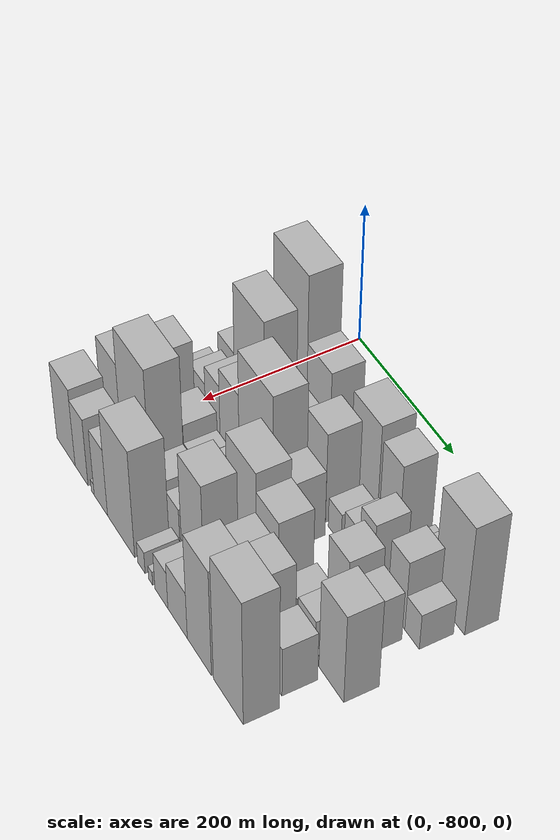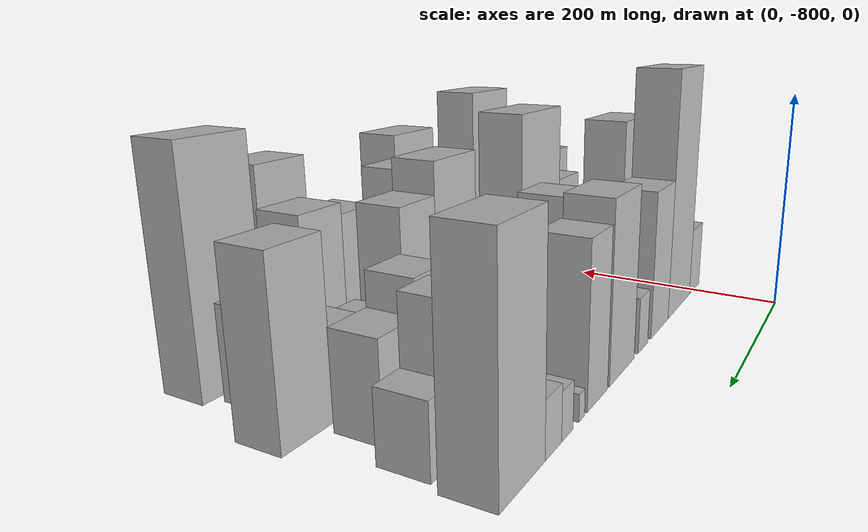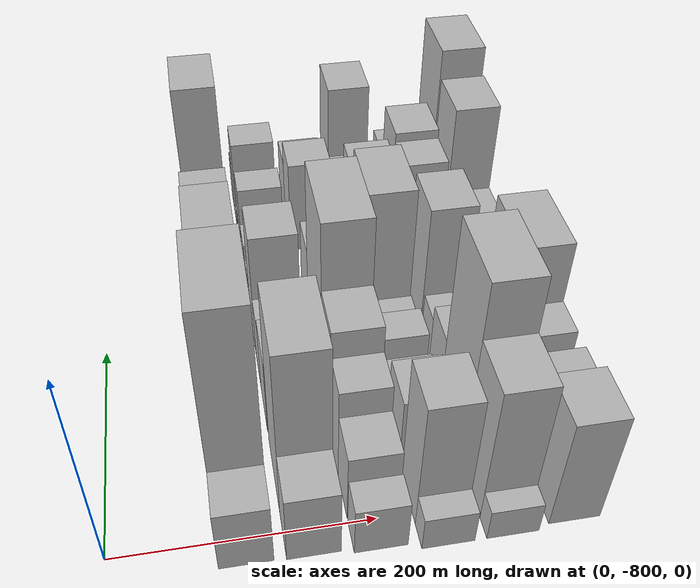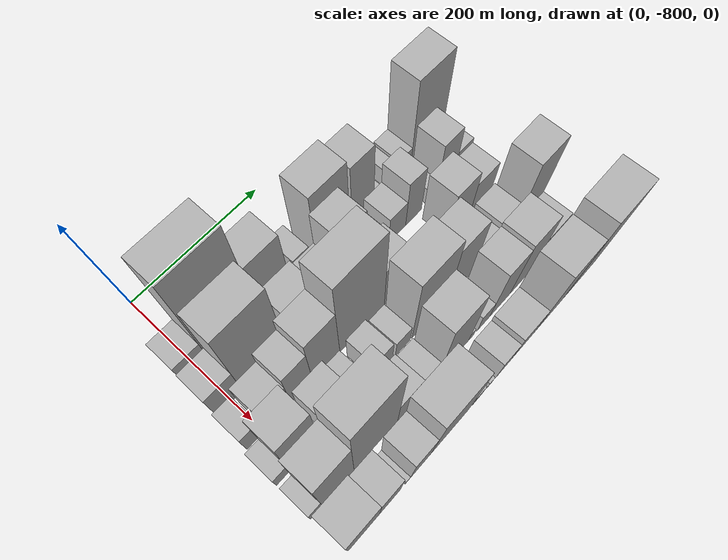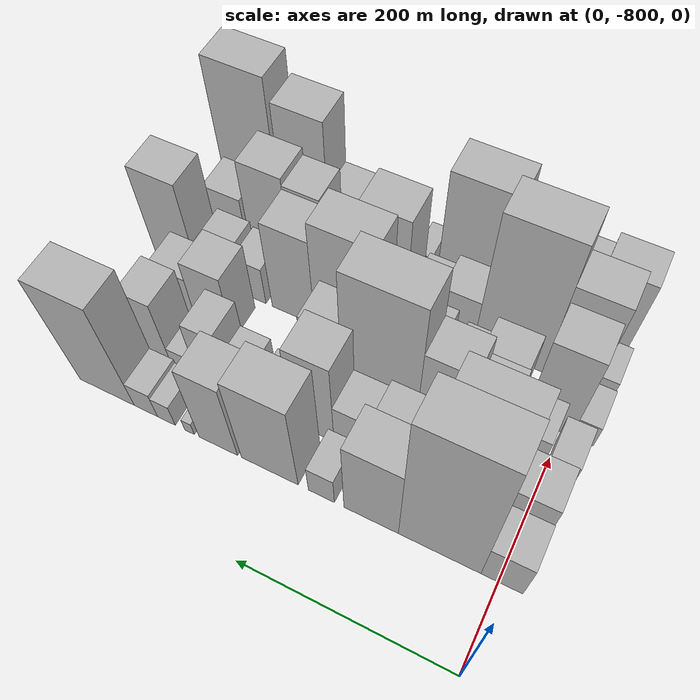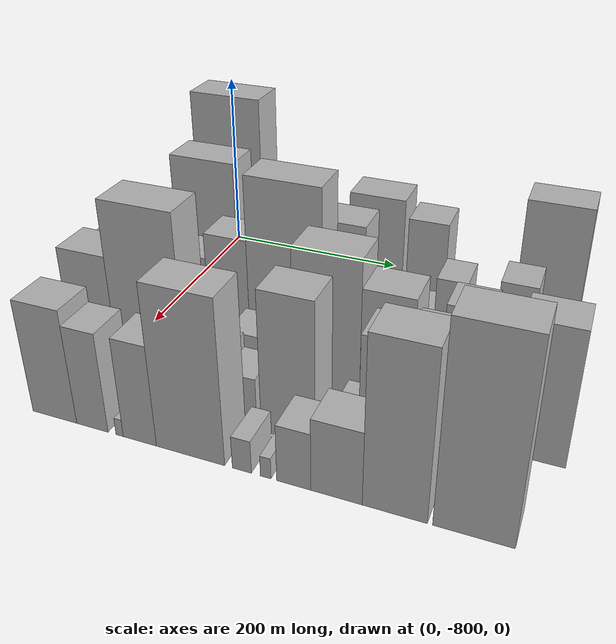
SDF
<sdf version="1.6">
 <world name="default">
  <model name="building_1">
   <static>1</static>
   <pose>100.0000 -802.7272 0 0.000000 0.000000 0.000000</pose>
   <link name="link">
    <pose>0 0 33.00 0 0 0</pose>
    <collision name="collision"><geometry><box><size>40.0000 36.5455 66.0000</size></box></geometry></collision>
    <visual name="visual">
     <cast_shadows>0</cast_shadows>
     <geometry><box><size>40.0000 36.5455 66.0000</size></box></geometry>
     <material>
      <script>
       <uri>model://HANNAS_wall/materials/scripts</uri>
       <uri>model://HANNAS_wall/materials/textures</uri>
       <name>vrc/HANNAS_wall</name>
      </script>
     </material>
    </visual>
   </link>
  </model>
  <model name="building_2">
   <static>1</static>
   <pose>100.0000 -747.2606 0 0.000000 0.000000 0.000000</pose>
   <link name="link">
    <pose>0 0 112.50 0 0 0</pose>
    <collision name="collision"><geometry><box><size>40.0000 74.3877 225.0000</size></box></geometry></collision>
    <visual name="visual">
     <cast_shadows>0</cast_shadows>
     <geometry><box><size>40.0000 74.3877 225.0000</size></box></geometry>
     <material>
      <script>
       <uri>model://HANNAS_wall/materials/scripts</uri>
       <uri>model://HANNAS_wall/materials/textures</uri>
       <name>vrc/HANNAS_wall</name>
      </script>
     </material>
    </visual>
   </link>
  </model>
  <model name="building_3">
   <static>1</static>
   <pose>100.0000 -684.5921 0 0.000000 0.000000 0.000000</pose>
   <link name="link">
    <pose>0 0 64.50 0 0 0</pose>
    <collision name="collision"><geometry><box><size>40.0000 50.9493 129.0000</size></box></geometry></collision>
    <visual name="visual">
     <cast_shadows>0</cast_shadows>
     <geometry><box><size>40.0000 50.9493 129.0000</size></box></geometry>
     <material>
      <script>
       <uri>model://HANNAS_wall/materials/scripts</uri>
       <uri>model://HANNAS_wall/materials/textures</uri>
       <name>vrc/HANNAS_wall</name>
      </script>
     </material>
    </visual>
   </link>
  </model>
  <model name="building_4">
   <static>1</static>
   <pose>100.0000 -637.5863 0 0.000000 0.000000 0.000000</pose>
   <link name="link">
    <pose>0 0 24.00 0 0 0</pose>
    <collision name="collision"><geometry><box><size>40.0000 25.0623 48.0000</size></box></geometry></collision>
    <visual name="visual">
     <cast_shadows>0</cast_shadows>
     <geometry><box><size>40.0000 25.0623 48.0000</size></box></geometry>
     <material>
      <script>
       <uri>model://HANNAS_wall/materials/scripts</uri>
       <uri>model://HANNAS_wall/materials/textures</uri>
       <name>vrc/HANNAS_wall</name>
      </script>
     </material>
    </visual>
   </link>
  </model>
  <model name="building_5">
   <static>1</static>
   <pose>100.0000 -586.9120 0 0.000000 0.000000 0.000000</pose>
   <link name="link">
    <pose>0 0 72.00 0 0 0</pose>
    <collision name="collision"><geometry><box><size>40.0000 56.2862 144.0000</size></box></geometry></collision>
    <visual name="visual">
     <cast_shadows>0</cast_shadows>
     <geometry><box><size>40.0000 56.2862 144.0000</size></box></geometry>
     <material>
      <script>
       <uri>model://HANNAS_wall/materials/scripts</uri>
       <uri>model://HANNAS_wall/materials/textures</uri>
       <name>vrc/HANNAS_wall</name>
      </script>
     </material>
    </visual>
   </link>
  </model>
  <model name="building_6">
   <static>1</static>
   <pose>100.0000 -535.0893 0 0.000000 0.000000 0.000000</pose>
   <link name="link">
    <pose>0 0 63.00 0 0 0</pose>
    <collision name="collision"><geometry><box><size>40.0000 39.3591 126.0000</size></box></geometry></collision>
    <visual name="visual">
     <cast_shadows>0</cast_shadows>
     <geometry><box><size>40.0000 39.3591 126.0000</size></box></geometry>
     <material>
      <script>
       <uri>model://HANNAS_wall/materials/scripts</uri>
       <uri>model://HANNAS_wall/materials/textures</uri>
       <name>vrc/HANNAS_wall</name>
      </script>
     </material>
    </visual>
   </link>
  </model>
  <model name="building_7">
   <static>1</static>
   <pose>100.0000 -505.4283 0 0.000000 0.000000 0.000000</pose>
   <link name="link">
    <pose>0 0 10.50 0 0 0</pose>
    <collision name="collision"><geometry><box><size>40.0000 9.9630 21.0000</size></box></geometry></collision>
    <visual name="visual">
     <cast_shadows>0</cast_shadows>
     <geometry><box><size>40.0000 9.9630 21.0000</size></box></geometry>
     <material>
      <script>
       <uri>model://HANNAS_wall/materials/scripts</uri>
       <uri>model://HANNAS_wall/materials/textures</uri>
       <name>vrc/HANNAS_wall</name>
      </script>
     </material>
    </visual>
   </link>
  </model>
  <model name="building_8">
   <static>1</static>
   <pose>100.0000 -481.1696 0 0.000000 0.000000 0.000000</pose>
   <link name="link">
    <pose>0 0 18.00 0 0 0</pose>
    <collision name="collision"><geometry><box><size>40.0000 18.5544 36.0000</size></box></geometry></collision>
    <visual name="visual">
     <cast_shadows>0</cast_shadows>
     <geometry><box><size>40.0000 18.5544 36.0000</size></box></geometry>
     <material>
      <script>
       <uri>model://HANNAS_wall/materials/scripts</uri>
       <uri>model://HANNAS_wall/materials/textures</uri>
       <name>vrc/HANNAS_wall</name>
      </script>
     </material>
    </visual>
   </link>
  </model>
  <model name="building_9">
   <static>1</static>
   <pose>100.0000 -459.4006 0 0.000000 0.000000 0.000000</pose>
   <link name="link">
    <pose>0 0 21.00 0 0 0</pose>
    <collision name="collision"><geometry><box><size>40.0000 24.9837 42.0000</size></box></geometry></collision>
    <visual name="visual">
     <cast_shadows>0</cast_shadows>
     <geometry><box><size>40.0000 24.9837 42.0000</size></box></geometry>
     <material>
      <script>
       <uri>model://HANNAS_wall/materials/scripts</uri>
       <uri>model://HANNAS_wall/materials/textures</uri>
       <name>vrc/HANNAS_wall</name>
      </script>
     </material>
    </visual>
   </link>
  </model>
  <model name="building_10">
   <static>1</static>
   <pose>100.0000 -417.1602 0 0.000000 0.000000 0.000000</pose>
   <link name="link">
    <pose>0 0 82.50 0 0 0</pose>
    <collision name="collision"><geometry><box><size>40.0000 59.4971 165.0000</size></box></geometry></collision>
    <visual name="visual">
     <cast_shadows>0</cast_shadows>
     <geometry><box><size>40.0000 59.4971 165.0000</size></box></geometry>
     <material>
      <script>
       <uri>model://HANNAS_wall/materials/scripts</uri>
       <uri>model://HANNAS_wall/materials/textures</uri>
       <name>vrc/HANNAS_wall</name>
      </script>
     </material>
    </visual>
   </link>
  </model>
  <model name="building_44">
   <static>1</static>
   <pose>149.0000 -803.0353 0 0.000000 0.000000 0.000000</pose>
   <link name="link">
    <pose>0 0 36.00 0 0 0</pose>
    <collision name="collision"><geometry><box><size>40.0000 37.9294 72.0000</size></box></geometry></collision>
    <visual name="visual">
     <cast_shadows>0</cast_shadows>
     <geometry><box><size>40.0000 37.9294 72.0000</size></box></geometry>
     <material>
      <script>
       <uri>model://HANNAS_wall/materials/scripts</uri>
       <uri>model://HANNAS_wall/materials/textures</uri>
       <name>vrc/HANNAS_wall</name>
      </script>
     </material>
    </visual>
   </link>
  </model>
  <model name="building_45">
   <static>1</static>
   <pose>149.0000 -750.1033 0 0.000000 0.000000 0.000000</pose>
   <link name="link">
    <pose>0 0 88.50 0 0 0</pose>
    <collision name="collision"><geometry><box><size>40.0000 67.9345 177.0000</size></box></geometry></collision>
    <visual name="visual">
     <cast_shadows>0</cast_shadows>
     <geometry><box><size>40.0000 67.9345 177.0000</size></box></geometry>
     <material>
      <script>
       <uri>model://HANNAS_wall/materials/scripts</uri>
       <uri>model://HANNAS_wall/materials/textures</uri>
       <name>vrc/HANNAS_wall</name>
      </script>
     </material>
    </visual>
   </link>
  </model>
  <model name="building_46">
   <static>1</static>
   <pose>149.0000 -683.1631 0 0.000000 0.000000 0.000000</pose>
   <link name="link">
    <pose>0 0 40.50 0 0 0</pose>
    <collision name="collision"><geometry><box><size>40.0000 47.9459 81.0000</size></box></geometry></collision>
    <visual name="visual">
     <cast_shadows>0</cast_shadows>
     <geometry><box><size>40.0000 47.9459 81.0000</size></box></geometry>
     <material>
      <script>
       <uri>model://HANNAS_wall/materials/scripts</uri>
       <uri>model://HANNAS_wall/materials/textures</uri>
       <name>vrc/HANNAS_wall</name>
      </script>
     </material>
    </visual>
   </link>
  </model>
  <model name="building_47">
   <static>1</static>
   <pose>149.0000 -641.7126 0 0.000000 0.000000 0.000000</pose>
   <link name="link">
    <pose>0 0 34.50 0 0 0</pose>
    <collision name="collision"><geometry><box><size>40.0000 34.9551 69.0000</size></box></geometry></collision>
    <visual name="visual">
     <cast_shadows>0</cast_shadows>
     <geometry><box><size>40.0000 34.9551 69.0000</size></box></geometry>
     <material>
      <script>
       <uri>model://HANNAS_wall/materials/scripts</uri>
       <uri>model://HANNAS_wall/materials/textures</uri>
       <name>vrc/HANNAS_wall</name>
      </script>
     </material>
    </visual>
   </link>
  </model>
  <model name="building_48">
   <static>1</static>
   <pose>149.0000 -603.1813 0 0.000000 0.000000 0.000000</pose>
   <link name="link">
    <pose>0 0 67.50 0 0 0</pose>
    <collision name="collision"><geometry><box><size>40.0000 42.1076 135.0000</size></box></geometry></collision>
    <visual name="visual">
     <cast_shadows>0</cast_shadows>
     <geometry><box><size>40.0000 42.1076 135.0000</size></box></geometry>
     <material>
      <script>
       <uri>model://HANNAS_wall/materials/scripts</uri>
       <uri>model://HANNAS_wall/materials/textures</uri>
       <name>vrc/HANNAS_wall</name>
      </script>
     </material>
    </visual>
   </link>
  </model>
  <model name="building_49">
   <static>1</static>
   <pose>149.0000 -562.7441 0 0.000000 0.000000 0.000000</pose>
   <link name="link">
    <pose>0 0 22.50 0 0 0</pose>
    <collision name="collision"><geometry><box><size>40.0000 26.7669 45.0000</size></box></geometry></collision>
    <visual name="visual">
     <cast_shadows>0</cast_shadows>
     <geometry><box><size>40.0000 26.7669 45.0000</size></box></geometry>
     <material>
      <script>
       <uri>model://HANNAS_wall/materials/scripts</uri>
       <uri>model://HANNAS_wall/materials/textures</uri>
       <name>vrc/HANNAS_wall</name>
      </script>
     </material>
    </visual>
   </link>
  </model>
  <model name="building_50">
   <static>1</static>
   <pose>149.0000 -528.2144 0 0.000000 0.000000 0.000000</pose>
   <link name="link">
    <pose>0 0 28.50 0 0 0</pose>
    <collision name="collision"><geometry><box><size>40.0000 30.2926 57.0000</size></box></geometry></collision>
    <visual name="visual">
     <cast_shadows>0</cast_shadows>
     <geometry><box><size>40.0000 30.2926 57.0000</size></box></geometry>
     <material>
      <script>
       <uri>model://HANNAS_wall/materials/scripts</uri>
       <uri>model://HANNAS_wall/materials/textures</uri>
       <name>vrc/HANNAS_wall</name>
      </script>
     </material>
    </visual>
   </link>
  </model>
  <model name="building_51">
   <static>1</static>
   <pose>149.0000 -498.4936 0 0.000000 0.000000 0.000000</pose>
   <link name="link">
    <pose>0 0 48.00 0 0 0</pose>
    <collision name="collision"><geometry><box><size>40.0000 29.1489 96.0000</size></box></geometry></collision>
    <visual name="visual">
     <cast_shadows>0</cast_shadows>
     <geometry><box><size>40.0000 29.1489 96.0000</size></box></geometry>
     <material>
      <script>
       <uri>model://HANNAS_wall/materials/scripts</uri>
       <uri>model://HANNAS_wall/materials/textures</uri>
       <name>vrc/HANNAS_wall</name>
      </script>
     </material>
    </visual>
   </link>
  </model>
  <model name="building_52">
   <static>1</static>
   <pose>149.0000 -464.7220 0 0.000000 0.000000 0.000000</pose>
   <link name="link">
    <pose>0 0 16.50 0 0 0</pose>
    <collision name="collision"><geometry><box><size>40.0000 18.3942 33.0000</size></box></geometry></collision>
    <visual name="visual">
     <cast_shadows>0</cast_shadows>
     <geometry><box><size>40.0000 18.3942 33.0000</size></box></geometry>
     <material>
      <script>
       <uri>model://HANNAS_wall/materials/scripts</uri>
       <uri>model://HANNAS_wall/materials/textures</uri>
       <name>vrc/HANNAS_wall</name>
      </script>
     </material>
    </visual>
   </link>
  </model>
  <model name="building_53">
   <static>1</static>
   <pose>149.0000 -438.6928 0 0.000000 0.000000 0.000000</pose>
   <link name="link">
    <pose>0 0 52.50 0 0 0</pose>
    <collision name="collision"><geometry><box><size>40.0000 33.6643 105.0000</size></box></geometry></collision>
    <visual name="visual">
     <cast_shadows>0</cast_shadows>
     <geometry><box><size>40.0000 33.6643 105.0000</size></box></geometry>
     <material>
      <script>
       <uri>model://HANNAS_wall/materials/scripts</uri>
       <uri>model://HANNAS_wall/materials/textures</uri>
       <name>vrc/HANNAS_wall</name>
      </script>
     </material>
    </visual>
   </link>
  </model>
  <model name="building_54">
   <static>1</static>
   <pose>149.0000 -407.9433 0 0.000000 0.000000 0.000000</pose>
   <link name="link">
    <pose>0 0 27.00 0 0 0</pose>
    <collision name="collision"><geometry><box><size>40.0000 27.8346 54.0000</size></box></geometry></collision>
    <visual name="visual">
     <cast_shadows>0</cast_shadows>
     <geometry><box><size>40.0000 27.8346 54.0000</size></box></geometry>
     <material>
      <script>
       <uri>model://HANNAS_wall/materials/scripts</uri>
       <uri>model://HANNAS_wall/materials/textures</uri>
       <name>vrc/HANNAS_wall</name>
      </script>
     </material>
    </visual>
   </link>
  </model>
  <model name="building_84">
   <static>1</static>
   <pose>198.0000 -812.0581 0 0.000000 0.000000 0.000000</pose>
   <link name="link">
    <pose>0 0 25.50 0 0 0</pose>
    <collision name="collision"><geometry><box><size>40.0000 25.8838 51.0000</size></box></geometry></collision>
    <visual name="visual">
     <cast_shadows>0</cast_shadows>
     <geometry><box><size>40.0000 25.8838 51.0000</size></box></geometry>
     <material>
      <script>
       <uri>model://HANNAS_wall/materials/scripts</uri>
       <uri>model://HANNAS_wall/materials/textures</uri>
       <name>vrc/HANNAS_wall</name>
      </script>
     </material>
    </visual>
   </link>
  </model>
  <model name="building_85">
   <static>1</static>
   <pose>198.0000 -777.2414 0 0.000000 0.000000 0.000000</pose>
   <link name="link">
    <pose>0 0 36.00 0 0 0</pose>
    <collision name="collision"><geometry><box><size>40.0000 37.7497 72.0000</size></box></geometry></collision>
    <visual name="visual">
     <cast_shadows>0</cast_shadows>
     <geometry><box><size>40.0000 37.7497 72.0000</size></box></geometry>
     <material>
      <script>
       <uri>model://HANNAS_wall/materials/scripts</uri>
       <uri>model://HANNAS_wall/materials/textures</uri>
       <name>vrc/HANNAS_wall</name>
      </script>
     </material>
    </visual>
   </link>
  </model>
  <model name="building_86">
   <static>1</static>
   <pose>198.0000 -741.5495 0 0.000000 0.000000 0.000000</pose>
   <link name="link">
    <pose>0 0 49.50 0 0 0</pose>
    <collision name="collision"><geometry><box><size>40.0000 33.6341 99.0000</size></box></geometry></collision>
    <visual name="visual">
     <cast_shadows>0</cast_shadows>
     <geometry><box><size>40.0000 33.6341 99.0000</size></box></geometry>
     <material>
      <script>
       <uri>model://HANNAS_wall/materials/scripts</uri>
       <uri>model://HANNAS_wall/materials/textures</uri>
       <name>vrc/HANNAS_wall</name>
      </script>
     </material>
    </visual>
   </link>
  </model>
  <model name="building_87">
   <static>1</static>
   <pose>198.0000 -702.9421 0 0.000000 0.000000 0.000000</pose>
   <link name="link">
    <pose>0 0 63.00 0 0 0</pose>
    <collision name="collision"><geometry><box><size>40.0000 43.5806 126.0000</size></box></geometry></collision>
    <visual name="visual">
     <cast_shadows>0</cast_shadows>
     <geometry><box><size>40.0000 43.5806 126.0000</size></box></geometry>
     <material>
      <script>
       <uri>model://HANNAS_wall/materials/scripts</uri>
       <uri>model://HANNAS_wall/materials/textures</uri>
       <name>vrc/HANNAS_wall</name>
      </script>
     </material>
    </visual>
   </link>
  </model>
  <model name="building_88">
   <static>1</static>
   <pose>198.0000 -643.9650 0 0.000000 0.000000 0.000000</pose>
   <link name="link">
    <pose>0 0 96.00 0 0 0</pose>
    <collision name="collision"><geometry><box><size>40.0000 74.3737 192.0000</size></box></geometry></collision>
    <visual name="visual">
     <cast_shadows>0</cast_shadows>
     <geometry><box><size>40.0000 74.3737 192.0000</size></box></geometry>
     <material>
      <script>
       <uri>model://HANNAS_wall/materials/scripts</uri>
       <uri>model://HANNAS_wall/materials/textures</uri>
       <name>vrc/HANNAS_wall</name>
      </script>
     </material>
    </visual>
   </link>
  </model>
  <model name="building_89">
   <static>1</static>
   <pose>198.0000 -587.0425 0 0.000000 0.000000 0.000000</pose>
   <link name="link">
    <pose>0 0 49.50 0 0 0</pose>
    <collision name="collision"><geometry><box><size>40.0000 39.4711 99.0000</size></box></geometry></collision>
    <visual name="visual">
     <cast_shadows>0</cast_shadows>
     <geometry><box><size>40.0000 39.4711 99.0000</size></box></geometry>
     <material>
      <script>
       <uri>model://HANNAS_wall/materials/scripts</uri>
       <uri>model://HANNAS_wall/materials/textures</uri>
       <name>vrc/HANNAS_wall</name>
      </script>
     </material>
    </visual>
   </link>
  </model>
  <model name="building_90">
   <static>1</static>
   <pose>198.0000 -472.4368 0 0.000000 0.000000 0.000000</pose>
   <link name="link">
    <pose>0 0 51.00 0 0 0</pose>
    <collision name="collision"><geometry><box><size>40.0000 39.9135 102.0000</size></box></geometry></collision>
    <visual name="visual">
     <cast_shadows>0</cast_shadows>
     <geometry><box><size>40.0000 39.9135 102.0000</size></box></geometry>
     <material>
      <script>
       <uri>model://HANNAS_wall/materials/scripts</uri>
       <uri>model://HANNAS_wall/materials/textures</uri>
       <name>vrc/HANNAS_wall</name>
      </script>
     </material>
    </visual>
   </link>
  </model>
  <model name="building_91">
   <static>1</static>
   <pose>198.0000 -432.6299 0 0.000000 0.000000 0.000000</pose>
   <link name="link">
    <pose>0 0 37.50 0 0 0</pose>
    <collision name="collision"><geometry><box><size>40.0000 39.7003 75.0000</size></box></geometry></collision>
    <visual name="visual">
     <cast_shadows>0</cast_shadows>
     <geometry><box><size>40.0000 39.7003 75.0000</size></box></geometry>
     <material>
      <script>
       <uri>model://HANNAS_wall/materials/scripts</uri>
       <uri>model://HANNAS_wall/materials/textures</uri>
       <name>vrc/HANNAS_wall</name>
      </script>
     </material>
    </visual>
   </link>
  </model>
  <model name="building_124">
   <static>1</static>
   <pose>247.0000 -819.8785 0 0.000000 0.000000 0.000000</pose>
   <link name="link">
    <pose>0 0 18.00 0 0 0</pose>
    <collision name="collision"><geometry><box><size>40.0000 20.2429 36.0000</size></box></geometry></collision>
    <visual name="visual">
     <cast_shadows>0</cast_shadows>
     <geometry><box><size>40.0000 20.2429 36.0000</size></box></geometry>
     <material>
      <script>
       <uri>model://HANNAS_wall/materials/scripts</uri>
       <uri>model://HANNAS_wall/materials/textures</uri>
       <name>vrc/HANNAS_wall</name>
      </script>
     </material>
    </visual>
   </link>
  </model>
  <model name="building_125">
   <static>1</static>
   <pose>247.0000 -787.7049 0 0.000000 0.000000 0.000000</pose>
   <link name="link">
    <pose>0 0 67.50 0 0 0</pose>
    <collision name="collision"><geometry><box><size>40.0000 44.1044 135.0000</size></box></geometry></collision>
    <visual name="visual">
     <cast_shadows>0</cast_shadows>
     <geometry><box><size>40.0000 44.1044 135.0000</size></box></geometry>
     <material>
      <script>
       <uri>model://HANNAS_wall/materials/scripts</uri>
       <uri>model://HANNAS_wall/materials/textures</uri>
       <name>vrc/HANNAS_wall</name>
      </script>
     </material>
    </visual>
   </link>
  </model>
  <model name="building_126">
   <static>1</static>
   <pose>247.0000 -735.1640 0 0.000000 0.000000 0.000000</pose>
   <link name="link">
    <pose>0 0 37.50 0 0 0</pose>
    <collision name="collision"><geometry><box><size>40.0000 42.9772 75.0000</size></box></geometry></collision>
    <visual name="visual">
     <cast_shadows>0</cast_shadows>
     <geometry><box><size>40.0000 42.9772 75.0000</size></box></geometry>
     <material>
      <script>
       <uri>model://HANNAS_wall/materials/scripts</uri>
       <uri>model://HANNAS_wall/materials/textures</uri>
       <name>vrc/HANNAS_wall</name>
      </script>
     </material>
    </visual>
   </link>
  </model>
  <model name="building_127">
   <static>1</static>
   <pose>247.0000 -701.3546 0 0.000000 0.000000 0.000000</pose>
   <link name="link">
    <pose>0 0 24.00 0 0 0</pose>
    <collision name="collision"><geometry><box><size>40.0000 24.6417 48.0000</size></box></geometry></collision>
    <visual name="visual">
     <cast_shadows>0</cast_shadows>
     <geometry><box><size>40.0000 24.6417 48.0000</size></box></geometry>
     <material>
      <script>
       <uri>model://HANNAS_wall/materials/scripts</uri>
       <uri>model://HANNAS_wall/materials/textures</uri>
       <name>vrc/HANNAS_wall</name>
      </script>
     </material>
    </visual>
   </link>
  </model>
  <model name="building_128">
   <static>1</static>
   <pose>247.0000 -663.8249 0 0.000000 0.000000 0.000000</pose>
   <link name="link">
    <pose>0 0 30.00 0 0 0</pose>
    <collision name="collision"><geometry><box><size>40.0000 30.4176 60.0000</size></box></geometry></collision>
    <visual name="visual">
     <cast_shadows>0</cast_shadows>
     <geometry><box><size>40.0000 30.4176 60.0000</size></box></geometry>
     <material>
      <script>
       <uri>model://HANNAS_wall/materials/scripts</uri>
       <uri>model://HANNAS_wall/materials/textures</uri>
       <name>vrc/HANNAS_wall</name>
      </script>
     </material>
    </visual>
   </link>
  </model>
  <model name="building_129">
   <static>1</static>
   <pose>247.0000 -631.0312 0 0.000000 0.000000 0.000000</pose>
   <link name="link">
    <pose>0 0 22.50 0 0 0</pose>
    <collision name="collision"><geometry><box><size>40.0000 25.1698 45.0000</size></box></geometry></collision>
    <visual name="visual">
     <cast_shadows>0</cast_shadows>
     <geometry><box><size>40.0000 25.1698 45.0000</size></box></geometry>
     <material>
      <script>
       <uri>model://HANNAS_wall/materials/scripts</uri>
       <uri>model://HANNAS_wall/materials/textures</uri>
       <name>vrc/HANNAS_wall</name>
      </script>
     </material>
    </visual>
   </link>
  </model>
  <model name="building_130">
   <static>1</static>
   <pose>247.0000 -584.0854 0 0.000000 0.000000 0.000000</pose>
   <link name="link">
    <pose>0 0 79.50 0 0 0</pose>
    <collision name="collision"><geometry><box><size>40.0000 62.7219 159.0000</size></box></geometry></collision>
    <visual name="visual">
     <cast_shadows>0</cast_shadows>
     <geometry><box><size>40.0000 62.7219 159.0000</size></box></geometry>
     <material>
      <script>
       <uri>model://HANNAS_wall/materials/scripts</uri>
       <uri>model://HANNAS_wall/materials/textures</uri>
       <name>vrc/HANNAS_wall</name>
      </script>
     </material>
    </visual>
   </link>
  </model>
  <model name="building_131">
   <static>1</static>
   <pose>247.0000 -529.5331 0 0.000000 0.000000 0.000000</pose>
   <link name="link">
    <pose>0 0 66.00 0 0 0</pose>
    <collision name="collision"><geometry><box><size>40.0000 46.3827 132.0000</size></box></geometry></collision>
    <visual name="visual">
     <cast_shadows>0</cast_shadows>
     <geometry><box><size>40.0000 46.3827 132.0000</size></box></geometry>
     <material>
      <script>
       <uri>model://HANNAS_wall/materials/scripts</uri>
       <uri>model://HANNAS_wall/materials/textures</uri>
       <name>vrc/HANNAS_wall</name>
      </script>
     </material>
    </visual>
   </link>
  </model>
  <model name="building_132">
   <static>1</static>
   <pose>247.0000 -484.1097 0 0.000000 0.000000 0.000000</pose>
   <link name="link">
    <pose>0 0 28.50 0 0 0</pose>
    <collision name="collision"><geometry><box><size>40.0000 30.4640 57.0000</size></box></geometry></collision>
    <visual name="visual">
     <cast_shadows>0</cast_shadows>
     <geometry><box><size>40.0000 30.4640 57.0000</size></box></geometry>
     <material>
      <script>
       <uri>model://HANNAS_wall/materials/scripts</uri>
       <uri>model://HANNAS_wall/materials/textures</uri>
       <name>vrc/HANNAS_wall</name>
      </script>
     </material>
    </visual>
   </link>
  </model>
  <model name="building_133">
   <static>1</static>
   <pose>247.0000 -448.3178 0 0.000000 0.000000 0.000000</pose>
   <link name="link">
    <pose>0 0 31.50 0 0 0</pose>
    <collision name="collision"><geometry><box><size>40.0000 35.1200 63.0000</size></box></geometry></collision>
    <visual name="visual">
     <cast_shadows>0</cast_shadows>
     <geometry><box><size>40.0000 35.1200 63.0000</size></box></geometry>
     <material>
      <script>
       <uri>model://HANNAS_wall/materials/scripts</uri>
       <uri>model://HANNAS_wall/materials/textures</uri>
       <name>vrc/HANNAS_wall</name>
      </script>
     </material>
    </visual>
   </link>
  </model>
  <model name="building_134">
   <static>1</static>
   <pose>247.0000 -426.9715 0 0.000000 0.000000 0.000000</pose>
   <link name="link">
    <pose>0 0 9.00 0 0 0</pose>
    <collision name="collision"><geometry><box><size>40.0000 7.5725 18.0000</size></box></geometry></collision>
    <visual name="visual">
     <cast_shadows>0</cast_shadows>
     <geometry><box><size>40.0000 7.5725 18.0000</size></box></geometry>
     <material>
      <script>
       <uri>model://HANNAS_wall/materials/scripts</uri>
       <uri>model://HANNAS_wall/materials/textures</uri>
       <name>vrc/HANNAS_wall</name>
      </script>
     </material>
    </visual>
   </link>
  </model>
  <model name="building_135">
   <static>1</static>
   <pose>247.0000 -398.7641 0 0.000000 0.000000 0.000000</pose>
   <link name="link">
    <pose>0 0 67.50 0 0 0</pose>
    <collision name="collision"><geometry><box><size>40.0000 48.8422 135.0000</size></box></geometry></collision>
    <visual name="visual">
     <cast_shadows>0</cast_shadows>
     <geometry><box><size>40.0000 48.8422 135.0000</size></box></geometry>
     <material>
      <script>
       <uri>model://HANNAS_wall/materials/scripts</uri>
       <uri>model://HANNAS_wall/materials/textures</uri>
       <name>vrc/HANNAS_wall</name>
      </script>
     </material>
    </visual>
   </link>
  </model>
  <model name="building_166">
   <static>1</static>
   <pose>296.0000 -821.2786 0 0.000000 0.000000 0.000000</pose>
   <link name="link">
    <pose>0 0 16.50 0 0 0</pose>
    <collision name="collision"><geometry><box><size>40.0000 17.4428 33.0000</size></box></geometry></collision>
    <visual name="visual">
     <cast_shadows>0</cast_shadows>
     <geometry><box><size>40.0000 17.4428 33.0000</size></box></geometry>
     <material>
      <script>
       <uri>model://HANNAS_wall/materials/scripts</uri>
       <uri>model://HANNAS_wall/materials/textures</uri>
       <name>vrc/HANNAS_wall</name>
      </script>
     </material>
    </visual>
   </link>
  </model>
  <model name="building_167">
   <static>1</static>
   <pose>296.0000 -788.5446 0 0.000000 0.000000 0.000000</pose>
   <link name="link">
    <pose>0 0 72.00 0 0 0</pose>
    <collision name="collision"><geometry><box><size>40.0000 48.0253 144.0000</size></box></geometry></collision>
    <visual name="visual">
     <cast_shadows>0</cast_shadows>
     <geometry><box><size>40.0000 48.0253 144.0000</size></box></geometry>
     <material>
      <script>
       <uri>model://HANNAS_wall/materials/scripts</uri>
       <uri>model://HANNAS_wall/materials/textures</uri>
       <name>vrc/HANNAS_wall</name>
      </script>
     </material>
    </visual>
   </link>
  </model>
  <model name="building_168">
   <static>1</static>
   <pose>296.0000 -730.0105 0 0.000000 0.000000 0.000000</pose>
   <link name="link">
    <pose>0 0 99.00 0 0 0</pose>
    <collision name="collision"><geometry><box><size>40.0000 69.0429 198.0000</size></box></geometry></collision>
    <visual name="visual">
     <cast_shadows>0</cast_shadows>
     <geometry><box><size>40.0000 69.0429 198.0000</size></box></geometry>
     <material>
      <script>
       <uri>model://HANNAS_wall/materials/scripts</uri>
       <uri>model://HANNAS_wall/materials/textures</uri>
       <name>vrc/HANNAS_wall</name>
      </script>
     </material>
    </visual>
   </link>
  </model>
  <model name="building_169">
   <static>1</static>
   <pose>296.0000 -676.6890 0 0.000000 0.000000 0.000000</pose>
   <link name="link">
    <pose>0 0 34.50 0 0 0</pose>
    <collision name="collision"><geometry><box><size>40.0000 37.6001 69.0000</size></box></geometry></collision>
    <visual name="visual">
     <cast_shadows>0</cast_shadows>
     <geometry><box><size>40.0000 37.6001 69.0000</size></box></geometry>
     <material>
      <script>
       <uri>model://HANNAS_wall/materials/scripts</uri>
       <uri>model://HANNAS_wall/materials/textures</uri>
       <name>vrc/HANNAS_wall</name>
      </script>
     </material>
    </visual>
   </link>
  </model>
  <model name="building_170">
   <static>1</static>
   <pose>296.0000 -643.4078 0 0.000000 0.000000 0.000000</pose>
   <link name="link">
    <pose>0 0 27.00 0 0 0</pose>
    <collision name="collision"><geometry><box><size>40.0000 28.9624 54.0000</size></box></geometry></collision>
    <visual name="visual">
     <cast_shadows>0</cast_shadows>
     <geometry><box><size>40.0000 28.9624 54.0000</size></box></geometry>
     <material>
      <script>
       <uri>model://HANNAS_wall/materials/scripts</uri>
       <uri>model://HANNAS_wall/materials/textures</uri>
       <name>vrc/HANNAS_wall</name>
      </script>
     </material>
    </visual>
   </link>
  </model>
  <model name="building_171">
   <static>1</static>
   <pose>296.0000 -599.9461 0 0.000000 0.000000 0.000000</pose>
   <link name="link">
    <pose>0 0 72.00 0 0 0</pose>
    <collision name="collision"><geometry><box><size>40.0000 49.9610 144.0000</size></box></geometry></collision>
    <visual name="visual">
     <cast_shadows>0</cast_shadows>
     <geometry><box><size>40.0000 49.9610 144.0000</size></box></geometry>
     <material>
      <script>
       <uri>model://HANNAS_wall/materials/scripts</uri>
       <uri>model://HANNAS_wall/materials/textures</uri>
       <name>vrc/HANNAS_wall</name>
      </script>
     </material>
    </visual>
   </link>
  </model>
  <model name="building_172">
   <static>1</static>
   <pose>296.0000 -570.1996 0 0.000000 0.000000 0.000000</pose>
   <link name="link">
    <pose>0 0 10.50 0 0 0</pose>
    <collision name="collision"><geometry><box><size>40.0000 9.5320 21.0000</size></box></geometry></collision>
    <visual name="visual">
     <cast_shadows>0</cast_shadows>
     <geometry><box><size>40.0000 9.5320 21.0000</size></box></geometry>
     <material>
      <script>
       <uri>model://HANNAS_wall/materials/scripts</uri>
       <uri>model://HANNAS_wall/materials/textures</uri>
       <name>vrc/HANNAS_wall</name>
      </script>
     </material>
    </visual>
   </link>
  </model>
  <model name="building_173">
   <static>1</static>
   <pose>296.0000 -548.1728 0 0.000000 0.000000 0.000000</pose>
   <link name="link">
    <pose>0 0 22.50 0 0 0</pose>
    <collision name="collision"><geometry><box><size>40.0000 22.5215 45.0000</size></box></geometry></collision>
    <visual name="visual">
     <cast_shadows>0</cast_shadows>
     <geometry><box><size>40.0000 22.5215 45.0000</size></box></geometry>
     <material>
      <script>
       <uri>model://HANNAS_wall/materials/scripts</uri>
       <uri>model://HANNAS_wall/materials/textures</uri>
       <name>vrc/HANNAS_wall</name>
      </script>
     </material>
    </visual>
   </link>
  </model>
  <model name="building_174">
   <static>1</static>
   <pose>296.0000 -518.3954 0 0.000000 0.000000 0.000000</pose>
   <link name="link">
    <pose>0 0 61.50 0 0 0</pose>
    <collision name="collision"><geometry><box><size>40.0000 37.0333 123.0000</size></box></geometry></collision>
    <visual name="visual">
     <cast_shadows>0</cast_shadows>
     <geometry><box><size>40.0000 37.0333 123.0000</size></box></geometry>
     <material>
      <script>
       <uri>model://HANNAS_wall/materials/scripts</uri>
       <uri>model://HANNAS_wall/materials/textures</uri>
       <name>vrc/HANNAS_wall</name>
      </script>
     </material>
    </visual>
   </link>
  </model>
  <model name="building_175">
   <static>1</static>
   <pose>296.0000 -477.2155 0 0.000000 0.000000 0.000000</pose>
   <link name="link">
    <pose>0 0 66.00 0 0 0</pose>
    <collision name="collision"><geometry><box><size>40.0000 45.3266 132.0000</size></box></geometry></collision>
    <visual name="visual">
     <cast_shadows>0</cast_shadows>
     <geometry><box><size>40.0000 45.3266 132.0000</size></box></geometry>
     <material>
      <script>
       <uri>model://HANNAS_wall/materials/scripts</uri>
       <uri>model://HANNAS_wall/materials/textures</uri>
       <name>vrc/HANNAS_wall</name>
      </script>
     </material>
    </visual>
   </link>
  </model>
  <model name="building_176">
   <static>1</static>
   <pose>296.0000 -430.2795 0 0.000000 0.000000 0.000000</pose>
   <link name="link">
    <pose>0 0 37.50 0 0 0</pose>
    <collision name="collision"><geometry><box><size>40.0000 40.5454 75.0000</size></box></geometry></collision>
    <visual name="visual">
     <cast_shadows>0</cast_shadows>
     <geometry><box><size>40.0000 40.5454 75.0000</size></box></geometry>
     <material>
      <script>
       <uri>model://HANNAS_wall/materials/scripts</uri>
       <uri>model://HANNAS_wall/materials/textures</uri>
       <name>vrc/HANNAS_wall</name>
      </script>
     </material>
    </visual>
   </link>
  </model>
  <model name="building_211">
   <static>1</static>
   <pose>345.0000 -802.8413 0 0.000000 0.000000 0.000000</pose>
   <link name="link">
    <pose>0 0 58.50 0 0 0</pose>
    <collision name="collision"><geometry><box><size>40.0000 46.3174 117.0000</size></box></geometry></collision>
    <visual name="visual">
     <cast_shadows>0</cast_shadows>
     <geometry><box><size>40.0000 46.3174 117.0000</size></box></geometry>
     <material>
      <script>
       <uri>model://HANNAS_wall/materials/scripts</uri>
       <uri>model://HANNAS_wall/materials/textures</uri>
       <name>vrc/HANNAS_wall</name>
      </script>
     </material>
    </visual>
   </link>
  </model>
  <model name="building_212">
   <static>1</static>
   <pose>345.0000 -763.6009 0 0.000000 0.000000 0.000000</pose>
   <link name="link">
    <pose>0 0 51.00 0 0 0</pose>
    <collision name="collision"><geometry><box><size>40.0000 32.1633 102.0000</size></box></geometry></collision>
    <visual name="visual">
     <cast_shadows>0</cast_shadows>
     <geometry><box><size>40.0000 32.1633 102.0000</size></box></geometry>
     <material>
      <script>
       <uri>model://HANNAS_wall/materials/scripts</uri>
       <uri>model://HANNAS_wall/materials/textures</uri>
       <name>vrc/HANNAS_wall</name>
      </script>
     </material>
    </visual>
   </link>
  </model>
  <model name="building_213">
   <static>1</static>
   <pose>345.0000 -735.8707 0 0.000000 0.000000 0.000000</pose>
   <link name="link">
    <pose>0 0 9.00 0 0 0</pose>
    <collision name="collision"><geometry><box><size>40.0000 7.2972 18.0000</size></box></geometry></collision>
    <visual name="visual">
     <cast_shadows>0</cast_shadows>
     <geometry><box><size>40.0000 7.2972 18.0000</size></box></geometry>
     <material>
      <script>
       <uri>model://HANNAS_wall/materials/scripts</uri>
       <uri>model://HANNAS_wall/materials/textures</uri>
       <name>vrc/HANNAS_wall</name>
      </script>
     </material>
    </visual>
   </link>
  </model>
  <model name="building_214">
   <static>1</static>
   <pose>345.0000 -715.9479 0 0.000000 0.000000 0.000000</pose>
   <link name="link">
    <pose>0 0 51.00 0 0 0</pose>
    <collision name="collision"><geometry><box><size>40.0000 32.5482 102.0000</size></box></geometry></collision>
    <visual name="visual">
     <cast_shadows>0</cast_shadows>
     <geometry><box><size>40.0000 32.5482 102.0000</size></box></geometry>
     <material>
      <script>
       <uri>model://HANNAS_wall/materials/scripts</uri>
       <uri>model://HANNAS_wall/materials/textures</uri>
       <name>vrc/HANNAS_wall</name>
      </script>
     </material>
    </visual>
   </link>
  </model>
  <model name="building_215">
   <static>1</static>
   <pose>345.0000 -667.5069 0 0.000000 0.000000 0.000000</pose>
   <link name="link">
    <pose>0 0 81.00 0 0 0</pose>
    <collision name="collision"><geometry><box><size>40.0000 64.3340 162.0000</size></box></geometry></collision>
    <visual name="visual">
     <cast_shadows>0</cast_shadows>
     <geometry><box><size>40.0000 64.3340 162.0000</size></box></geometry>
     <material>
      <script>
       <uri>model://HANNAS_wall/materials/scripts</uri>
       <uri>model://HANNAS_wall/materials/textures</uri>
       <name>vrc/HANNAS_wall</name>
      </script>
     </material>
    </visual>
   </link>
  </model>
  <model name="building_216">
   <static>1</static>
   <pose>345.0000 -619.7476 0 0.000000 0.000000 0.000000</pose>
   <link name="link">
    <pose>0 0 16.50 0 0 0</pose>
    <collision name="collision"><geometry><box><size>40.0000 17.1845 33.0000</size></box></geometry></collision>
    <visual name="visual">
     <cast_shadows>0</cast_shadows>
     <geometry><box><size>40.0000 17.1845 33.0000</size></box></geometry>
     <material>
      <script>
       <uri>model://HANNAS_wall/materials/scripts</uri>
       <uri>model://HANNAS_wall/materials/textures</uri>
       <name>vrc/HANNAS_wall</name>
      </script>
     </material>
    </visual>
   </link>
  </model>
  <model name="building_217">
   <static>1</static>
   <pose>345.0000 -598.4629 0 0.000000 0.000000 0.000000</pose>
   <link name="link">
    <pose>0 0 10.50 0 0 0</pose>
    <collision name="collision"><geometry><box><size>40.0000 9.3849 21.0000</size></box></geometry></collision>
    <visual name="visual">
     <cast_shadows>0</cast_shadows>
     <geometry><box><size>40.0000 9.3849 21.0000</size></box></geometry>
     <material>
      <script>
       <uri>model://HANNAS_wall/materials/scripts</uri>
       <uri>model://HANNAS_wall/materials/textures</uri>
       <name>vrc/HANNAS_wall</name>
      </script>
     </material>
    </visual>
   </link>
  </model>
  <model name="building_218">
   <static>1</static>
   <pose>345.0000 -574.0871 0 0.000000 0.000000 0.000000</pose>
   <link name="link">
    <pose>0 0 28.50 0 0 0</pose>
    <collision name="collision"><geometry><box><size>40.0000 29.3668 57.0000</size></box></geometry></collision>
    <visual name="visual">
     <cast_shadows>0</cast_shadows>
     <geometry><box><size>40.0000 29.3668 57.0000</size></box></geometry>
     <material>
      <script>
       <uri>model://HANNAS_wall/materials/scripts</uri>
       <uri>model://HANNAS_wall/materials/textures</uri>
       <name>vrc/HANNAS_wall</name>
      </script>
     </material>
    </visual>
   </link>
  </model>
  <model name="building_219">
   <static>1</static>
   <pose>345.0000 -537.9459 0 0.000000 0.000000 0.000000</pose>
   <link name="link">
    <pose>0 0 36.00 0 0 0</pose>
    <collision name="collision"><geometry><box><size>40.0000 42.9156 72.0000</size></box></geometry></collision>
    <visual name="visual">
     <cast_shadows>0</cast_shadows>
     <geometry><box><size>40.0000 42.9156 72.0000</size></box></geometry>
     <material>
      <script>
       <uri>model://HANNAS_wall/materials/scripts</uri>
       <uri>model://HANNAS_wall/materials/textures</uri>
       <name>vrc/HANNAS_wall</name>
      </script>
     </material>
    </visual>
   </link>
  </model>
  <model name="building_220">
   <static>1</static>
   <pose>345.0000 -490.5097 0 0.000000 0.000000 0.000000</pose>
   <link name="link">
    <pose>0 0 81.00 0 0 0</pose>
    <collision name="collision"><geometry><box><size>40.0000 51.9569 162.0000</size></box></geometry></collision>
    <visual name="visual">
     <cast_shadows>0</cast_shadows>
     <geometry><box><size>40.0000 51.9569 162.0000</size></box></geometry>
     <material>
      <script>
       <uri>model://HANNAS_wall/materials/scripts</uri>
       <uri>model://HANNAS_wall/materials/textures</uri>
       <name>vrc/HANNAS_wall</name>
      </script>
     </material>
    </visual>
   </link>
  </model>
  <model name="building_221">
   <static>1</static>
   <pose>345.0000 -429.4794 0 0.000000 0.000000 0.000000</pose>
   <link name="link">
    <pose>0 0 94.50 0 0 0</pose>
    <collision name="collision"><geometry><box><size>40.0000 62.1036 189.0000</size></box></geometry></collision>
    <visual name="visual">
     <cast_shadows>0</cast_shadows>
     <geometry><box><size>40.0000 62.1036 189.0000</size></box></geometry>
     <material>
      <script>
       <uri>model://HANNAS_wall/materials/scripts</uri>
       <uri>model://HANNAS_wall/materials/textures</uri>
       <name>vrc/HANNAS_wall</name>
      </script>
     </material>
    </visual>
   </link>
  </model>
 </world>
</sdf>
